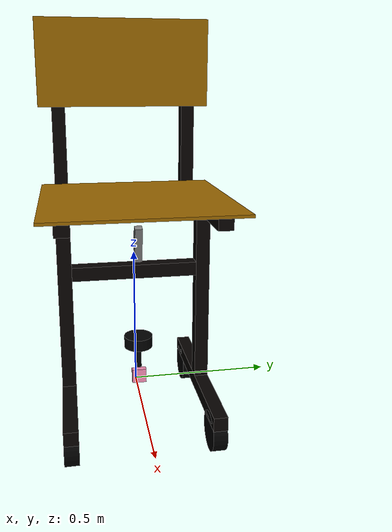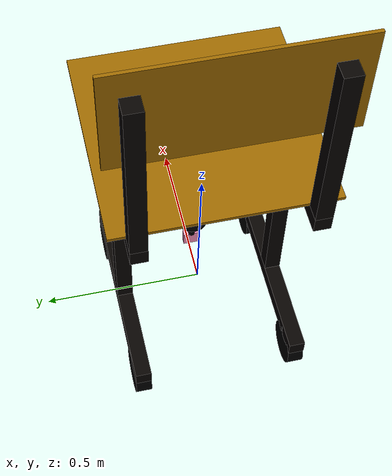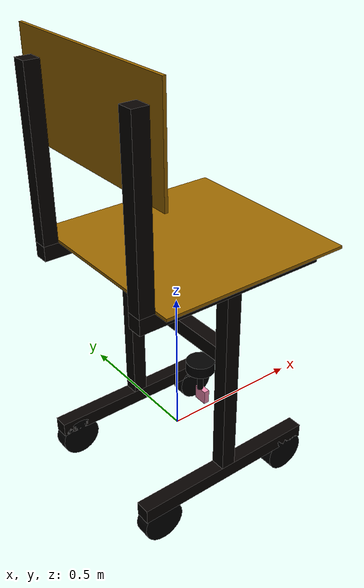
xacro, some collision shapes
<?xml version="1.0"?>
<robot xmlns:xacro="http://www.ros.org/wiki/xacro" name="robot">
    <xacro:include filename="$(find robot_description)/urdf/gazebo.urdf.xacro"/>
    <xacro:include filename="$(find robot_description)/urdf/lidar.urdf.xacro"/>
    <xacro:include filename="$(find robot_description)/urdf/depth.urdf.xacro"/>
    <xacro:include filename="$(find robot_description)/urdf/imu.urdf.xacro"/>

<material name="brown">
  <color rgba="0.02 0.005 0 1"/>
</material>
<material name="yellow">
  <color rgba="0.6 0.4 0 1"/>
</material>
<material name="black">
  <color rgba="0 0 0 1"/>
</material>

<xacro:property name="base_width" value="0.45" />
<xacro:property name="block_thickness" value="0.05"/>
<xacro:property name="height" value="0.65"/>
<xacro:property name="leg_length" value="0.65"/>
<xacro:property name="backrest_mount_height" value="0.55"/>
<xacro:property name="board_w" value="0.65"/>
<xacro:property name="board_t" value="0.01"/>
<xacro:property name="wheel_radius" value="0.07"/>
<xacro:property name="wheel_thickness" value="0.05"/>
<xacro:property name="wheel_mass" value="0.5"/>
<link name="base_link">
</link>

<link name="base_footprint">
</link>

<joint name="base_footprint_joint" type="fixed">
  <parent link="base_link"/>
  <child link="base_footprint"/>
  <origin xyz="0 0 -${2 * wheel_radius + block_thickness}" rpy="0 0 0"/>
</joint>

<xacro:macro name="side" params="prefix reflect m">
  <link name="${prefix}_side">
      <visual>
          <geometry>
            <box size="${block_thickness} ${block_thickness} ${height}"/>
          </geometry>
          <origin xyz="0 0 ${-height / 6}"/>
          <material name="brown"/>
      </visual>
    <collision>
      <geometry>
        <box size="${block_thickness} ${block_thickness} ${height}"/>
      </geometry>
      <origin xyz="0 0 ${-height / 6}"/>
    </collision>
    <inertial>
      <mass value="${m}"/>
      <inertia ixx="${m / 12 * (height * height + block_thickness * block_thickness)}" ixy="0.0"
      ixz="0.0" iyy="${m / 12 * (height * height + block_thickness * block_thickness)}" iyz="0.0"
      izz="${m / 12 * 2 * block_thickness * block_thickness}"/>
      <origin xyz="0 0 ${-height / 6}"/>
    </inertial>
  </link>
  <joint name="legging_to_${prefix}_side" type="fixed">
    <parent link="legging"/>
    <child link="${prefix}_side"/>
    <origin xyz="0 ${reflect * (base_width + block_thickness) / 2} 0"/>
  </joint>
</xacro:macro>

<xacro:macro name="leg" params="prefix reflect m">
  <link name="${prefix}_leg">
    <visual>
      <geometry>
        <box size="${leg_length} ${block_thickness} ${block_thickness}"/>
      </geometry>
        <origin xyz="0 0 ${-block_thickness / 2}"/>
        <material name="brown"/>
    </visual>
    <collision>
      <geometry>
        <box size="${leg_length} ${block_thickness} ${block_thickness}"/>
      </geometry>
      <origin xyz="0 0 ${-block_thickness / 2}"/>
    </collision>
    <inertial>
      <mass value="${m}"/>
      <inertia ixx="${m / 12 * 2 * block_thickness * block_thickness}" ixy="0.0"
      ixz="0.0" iyy="${m / 12 * (leg_length * leg_length + block_thickness * block_thickness)}" iyz="0.0"
      izz="${m / 12 * (leg_length * leg_length + block_thickness * block_thickness)}"/>
      <origin xyz="0 0 ${-block_thickness / 2}"/>
    </inertial>
  </link>
  <joint name="${prefix}_side_to_${prefix}_leg" type="fixed">
    <parent link="${prefix}_side"/>
    <child link="${prefix}_leg"/>
    <origin xyz="0 0 ${-8 * height / 12}"/>
  </joint>
</xacro:macro>

<xacro:macro name="seat_mount" params="prefix reflect m">
  <link name="${prefix}_seat_mount">
    <visual>
      <geometry>
        <box size="${leg_length} ${block_thickness} ${block_thickness}"/>
      </geometry>
      <origin xyz="0 0 ${block_thickness / 2}"/>
      <material name="brown"/>
    </visual>
    <collision>
      <geometry>
        <box size="${leg_length} ${block_thickness} ${block_thickness}"/>
      </geometry>
      <origin xyz="0 0 ${block_thickness / 2}"/>
    </collision>
    <inertial>
      <mass value="${m}"/>
      <inertia ixx="${m / 12 * 2 * block_thickness * block_thickness}" ixy="0.0"
      ixz="0.0" iyy="${m / 12 * (leg_length * leg_length + block_thickness * block_thickness)}" iyz="0.0"
      izz="${m / 12 * (leg_length * leg_length + block_thickness * block_thickness)}"/>
      <origin xyz="0 0 ${block_thickness / 2}"/>
    </inertial>
  </link>
  <joint name="${prefix}_side_to_${prefix}_seat_mount" type="fixed">
    <parent link="${prefix}_side"/>
    <child link="${prefix}_seat_mount"/>
    <origin xyz="0 0 ${height / 3}"/>
  </joint>
</xacro:macro>

<xacro:macro name="backrest_mount" params="prefix reflect m">
  <link name="${prefix}_backrest_mount">
      <visual>
          <geometry>
            <box size="${block_thickness} ${block_thickness} ${backrest_mount_height}"/>
          </geometry>
          <origin xyz="0 0 ${backrest_mount_height / 2}"/>
          <material name="brown"/>
      </visual>
    <collision>
      <geometry>
        <box size="${block_thickness} ${block_thickness} ${backrest_mount_height}"/>
      </geometry>
      <origin xyz="0 0 ${backrest_mount_height / 2}"/>
    </collision>
    <inertial>
      <mass value="${m}"/>
      <inertia ixx="${m / 12 * (block_thickness * block_thickness + backrest_mount_height * backrest_mount_height)}" ixy="0.0"
      ixz="0.0" iyy="${m / 12 * (backrest_mount_height * backrest_mount_height + block_thickness * block_thickness)}" iyz="0.0"
      izz="${m / 12 * 2 * block_thickness * block_thickness}"/>
      <origin xyz="0 0 ${backrest_mount_height / 2}"/>
    </inertial>
  </link>
  <joint name="${prefix}_backrest_mount_to_${prefix}_seat_mount" type="fixed">
    <parent link="${prefix}_seat_mount"/>
    <child link="${prefix}_backrest_mount"/>
    <origin xyz="${-(leg_length - block_thickness) / 2} 0 ${block_thickness}"/>
  </joint>
</xacro:macro>

<xacro:macro name="wheel" params="prefix prefix2 reflect reflect2">
  <link name="${prefix}_${prefix2}_wheel">
    <visual>
      <geometry>
        <cylinder length="${wheel_thickness}" radius="${wheel_radius}"/>
      </geometry>
      <material name="black"/>
    </visual>
    <collision>
      <geometry>
        <sphere radius="${wheel_radius}"/>
      </geometry>
    </collision>
    <inertial>
      <mass value="${wheel_mass}" />
      <inertia ixx="${(1/12) * wheel_mass * (3*wheel_radius*wheel_radius + wheel_thickness*wheel_thickness)}" ixy="0.0" ixz="0.0"
                iyy="${(1/12) * wheel_mass * (3*wheel_radius*wheel_radius + wheel_thickness*wheel_thickness)}" iyz="0.0"
                izz="${(1/2) * wheel_mass * (wheel_radius*wheel_radius)}" />
    </inertial>
  </link>
  <joint name="${prefix}_${prefix2}_wheel_joint" type="continuous">
    <parent link="base_link"/>
    <child link="${prefix}_${prefix2}_wheel"/>
    <axis xyz="0 0 ${reflect2}"/>
    <origin xyz="${reflect * 0.4 * leg_length} ${reflect2 * (base_width + block_thickness) / 2} ${-block_thickness - 0.035}"
    rpy="${-reflect2 * pi/2} 0 0"/>
  </joint>

</xacro:macro>

<xacro:macro name="legging" params="m">
<link name="legging">
  <visual>
    <geometry>
      <box size="${block_thickness} ${base_width} ${block_thickness}"/>
    </geometry>
    <material name="brown"/>
  </visual>
  <collision>
    <geometry>
      <box size="${block_thickness} ${base_width} ${block_thickness}"/>
    </geometry>
  </collision>
  <inertial>
    <mass value="${m}"/>
    <inertia ixx="${m / 12 * (base_width * base_width + block_thickness * block_thickness)}" ixy="0.0"
    ixz="0.0" iyy="${m / 12 * (2 * block_thickness * block_thickness)}" iyz="0.0"
    izz="${m / 12 * (base_width * base_width + block_thickness * block_thickness)}"/>
  </inertial>
</link>

<joint name="base_link_to_legging" type="fixed">
  <parent link="base_link"/>
  <child link="legging"/>
  <origin xyz="0 0 ${8 * height / 12}"/>
</joint>

</xacro:macro>

<xacro:macro name="seat" params="m">
<link name="seat">
  <visual>
    <geometry>
      <box size="${leg_length} ${board_w} ${board_t}"/>
    </geometry>
    <origin xyz="${block_thickness} 0 0"/>
    <material name="yellow"/>
  </visual>
  <collision>
    <geometry>
      <box size="${leg_length} ${board_w} ${board_t}"/>
    </geometry>
    <origin xyz="${block_thickness} 0 0"/>
  </collision>
  <inertial>
    <mass value="${m}"/>
    <inertia ixx="${m / 12 * (board_w * board_w + board_t * board_t)}" ixy="0.0"
    ixz="0.0" iyy="${m / 12 * (leg_length * leg_length + board_t * board_t)}" iyz="0.0"
    izz="${m / 12 * (board_w * board_w + leg_length * leg_length)}"/>
    <origin xyz="${block_thickness} 0 0"/>
  </inertial>
</link>
<joint name="legging_to_seat" type="fixed">
  <parent link="legging"/>
  <child link="seat"/>
  <origin xyz="0 0 ${height / 3 + block_thickness + board_t / 2}"/>
</joint>
</xacro:macro>

<xacro:macro name="backrest" params="m">
<link name="backrest">
  <visual>
    <geometry>
      <box size="${board_t} ${board_w} ${7 * backrest_mount_height / 12}"/>
    </geometry>
    <material name="yellow"/>
  </visual>
  <collision>
    <geometry>
      <box size="${board_t} ${board_w} ${7 * backrest_mount_height / 12}"/>
    </geometry>
  </collision>
  <inertial>
    <mass value="${m}"/>
    <inertia ixx="${m / 12 * (board_w * board_w + 49 * backrest_mount_height * backrest_mount_height / 144)}" ixy="0.0"
    ixz="0.0" iyy="${m / 12 * (49 * backrest_mount_height * backrest_mount_height / 144 + board_t * board_t)}" iyz="0.0"
    izz="${m / 12 * (board_w * board_w + board_t * board_t)}"/>
  </inertial>
</link>
<joint name="legging_to_backrest" type="fixed">
  <parent link="legging"/>
  <child link="backrest"/>
  <origin xyz="-${(leg_length - board_t) / 2 - block_thickness} 0 ${height / 3 + 1.5 * block_thickness + 0.8 * backrest_mount_height}"/>
</joint>
</xacro:macro>

<xacro:legging m="0.1"/>

<xacro:side prefix="right" reflect="1" m="0.5"/>
<xacro:side prefix="left" reflect="-1" m="0.5"/>
<xacro:leg prefix="right" reflect="1" m="0.5"/>
<xacro:leg prefix="left" reflect="-1" m="0.5"/>
<xacro:seat_mount prefix="right" reflect="1" m="0.1"/>
<xacro:seat_mount prefix="left" reflect="-1" m="0.1"/>
<xacro:backrest_mount prefix="right" reflect="1" m="0.1"/>
<xacro:backrest_mount prefix="left" reflect="-1" m="0.1"/>

<xacro:seat m="0.01"/>
<xacro:backrest m="0.01"/>

<xacro:wheel prefix="front" prefix2="right" reflect="1" reflect2="-1"/>
<xacro:wheel prefix="rear" prefix2="right" reflect="-1" reflect2="-1"/>
<xacro:wheel prefix="front" prefix2="left" reflect="1" reflect2="1"/>
<xacro:wheel prefix="rear" prefix2="left" reflect="-1" reflect2="1"/>
</robot>

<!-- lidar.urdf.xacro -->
<robot xmlns:xacro="http://www.ros.org/wiki/xacro">

    <joint name="laser_joint" type="fixed">
        <parent link="base_link"/>
        <child link="laser_frame"/>
        <origin xyz="0.1 0 0.2" rpy="0 0 0"/>
    </joint>

    <link name="laser_frame">
        <visual>
            <geometry>
                <cylinder radius="0.05" length="0.04"/>
            </geometry>
            <material name="black"/>
        </visual>
        <visual>
            <origin xyz="0 0 -0.05"/>
            <geometry>
                <cylinder radius="0.01" length="0.1"/>
            </geometry>
            <material name="black"/>
        </visual>
        <collision>
            <geometry>
                <cylinder radius="0.05" length="0.04"/>
            </geometry>
        </collision>
        <inertial>
            <origin xyz="0 0 0" rpy="0 0 0"/>
            <mass value="0.1" />
            <inertia ixx="${(1/12) * 0.1 * (3*0.05*0.05 + 0.04*0.04)}" ixy="0.0" ixz="0.0"
                     iyy="${(1/12) * 0.1 * (3*0.05*0.05 + 0.04*0.04)}" iyz="0.0"
                     izz="${(1/2) * 0.1 * (0.05*0.05)}" />
        </inertial>
    </link>

    <gazebo reference="laser_frame">
        <material>Gazebo/Black</material>

        <sensor name='laser_sensor_frame' type='gpu_lidar'>"
            <gz_frame_id>robot/laser_frame</gz_frame_id>
            <pose> 0 0 0 0 0 0 </pose>
            <visualize>true</visualize>
            <always_on>true</always_on>
            <update_rate>10</update_rate>
            <ray>
                <scan>
                    <horizontal>
                        <samples>360</samples>
                        <min_angle>-3.14</min_angle>
                        <max_angle>3.14</max_angle>
                    </horizontal>
                </scan>
                <range>
                    <min>0.3</min>
                    <max>12</max>
                </range>
                <noise>
                    <type>gaussian</type>
                    <mean>0.0</mean>
                    <stddev>0.007</stddev>
                </noise>
            </ray>
        </sensor>
    </gazebo>
</robot>

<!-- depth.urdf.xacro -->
<robot xmlns:xacro="http://www.ros.org/wiki/xacro">

    <xacro:property name="M_PI" value="3.1415926535897931" />

    <joint name="depth_joint" type="fixed">
        <parent link="base_link"/>
        <child link="depth_frame"/>
        <origin xyz="0.1 0.05 0.56" rpy="0 0.2 0"/>
    </joint>

    <material name="aluminum">
      <color rgba="0.5 0.5 0.5 1"/>
    </material>

    <link name="depth_frame">
        <visual>
            <origin xyz="0.00465 -0.0475 0" rpy="${M_PI/2} 0 ${M_PI/2}"/>
            <geometry>
                <mesh filename="file://$(find robot_description)/urdf/d455.stl" scale="0.001 0.001 0.001"/>
                <!--box size="0.026 0.124 0.029"/-->
            </geometry>
            <material name="aluminum"/>
        </visual>
        <collision>
            <origin xyz="0.00465 -0.0475 0" rpy="${M_PI/2} 0 ${M_PI/2}"/>
            <geometry>
                <box size="0.026 0.124 0.029"/>
            </geometry>
        </collision>
        <inertial>
            <origin xyz="0 0 0" rpy="0 0 0"/>
            <mass value="0.116" />
            <inertia ixx="${(1/12) * 0.116 * (0.026*0.026+0.029*0.029)}" ixy="0.0" ixz="0.0"
                     iyy="${(1/12) * 0.116 * (0.124*0.124+0.029*0.029)}" iyz="0.0"
                     izz="${(1/12) * 0.116 * (0.124*0.124+0.026*0.026)}" />
        </inertial>
    </link>

    <gazebo reference="depth_frame">
        <sensor name='depth_sensor_frame' type='depth_camera'>"
            <gz_frame_id>robot/depth_frame</gz_frame_id>
            <pose> 0 0 0 0 0 0 </pose>
            <always_on>true</always_on>
            <update_rate>10</update_rate>
            <camera>
                <horizontal_fov>1.51843645</horizontal_fov>
                <image>
                    <width>848</width>
                    <height>480</height>
                    <format>R_FLOAT32</format>
                </image>
                <clip>
                    <near>0.1</near>
                    <far>10</far>
                </clip>
                <lens>
                    <intrinsics>
                    <fx>421.61578369140625</fx>
                    <fy>421.61578369140625</fy>
                    <cx>422.2854309082031</cx>
                    <cy>236.57237243652344</cy>
                    <s>0</s>
                    </intrinsics>
                </lens>
                <noise>
                    <type>gaussian</type>
                    <mean>0.0</mean>
                    <stddev>0.007</stddev>
                </noise>
            </camera>
        </sensor>
        <sensor name="color_sensor_frame" type="camera">
            <gz_frame_id>robot/depth_frame</gz_frame_id>
            <pose>0 0 0 0 0 0</pose>
            <update_rate>30</update_rate>
            <always_on>true</always_on>
            <camera>
                <horizontal_fov>1.20427718</horizontal_fov>
                <image>
                    <width>848</width>
                    <height>480</height>
                </image>
                <clip>
                    <near>0.1</near>
                    <far>50</far>
                </clip>
                <lens>
                    <intrinsics>
                    <fx>615.9603271484375</fx>
                    <fy>616.227294921875</fy>
                    <cx>419.83026123046875</cx>
                    <cy>245.1431427001953</cy>
                    <s>0</s>
                    </intrinsics>
                </lens>
            </camera>
        </sensor>
    </gazebo>
</robot>

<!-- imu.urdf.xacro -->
<robot xmlns:xacro="http://www.ros.org/wiki/xacro" name="imu">

    <joint name="imu_sensor_joint" type="fixed">
        <origin xyz="0.11 0.0 0.07" rpy="0 0 0"/>
        <parent link="base_link"/>
        <child link="imu_sensor_link"/>
    </joint>

    <link name="imu_sensor_link">
        <inertial>
        <origin xyz="0 0 0" rpy="0 0 0"/>
        <mass value="0.02" />
        <inertia ixx="${(1/12) * 0.01 * (0.2*0.2+0.5*0.5)}" ixy="0.0" ixz="0.0"
                 iyy="${(1/12) * 0.01 * (0.2*0.2+0.5*0.5)}" iyz="0.0"
                 izz="${(1/12) * 0.01 * (0.2*0.2+0.5*0.5)}" />
    </inertial>
    <visual>
        <origin xyz="0 0 0"/>
        <geometry>
            <box size="0.02 0.05 0.05"/>
        </geometry>
        <material name="pink"/>
    </visual>
    <collision>
        <origin xyz="0 0 0"/>
        <geometry>
            <box size="0.02 0.05 0.05"/>
        </geometry>
    </collision>
    </link>

    <gazebo reference="imu_sensor_link">
        <gravity>true</gravity>
        <sensor name='imu_sensor' type='imu'>
            <always_on>true</always_on>
            <update_rate>1</update_rate>
            <visualize>true</visualize>
            <topic>imu</topic>
            <pose>0 0 0 0 0 0</pose>
        </sensor>
    </gazebo>

</robot>
